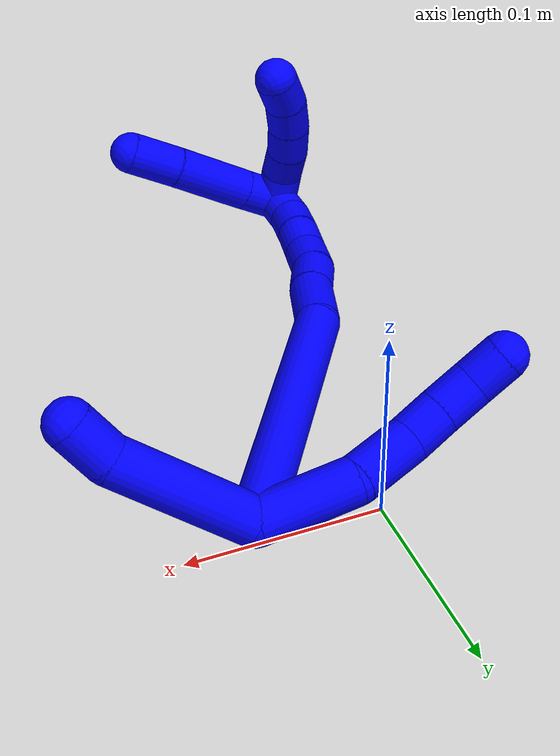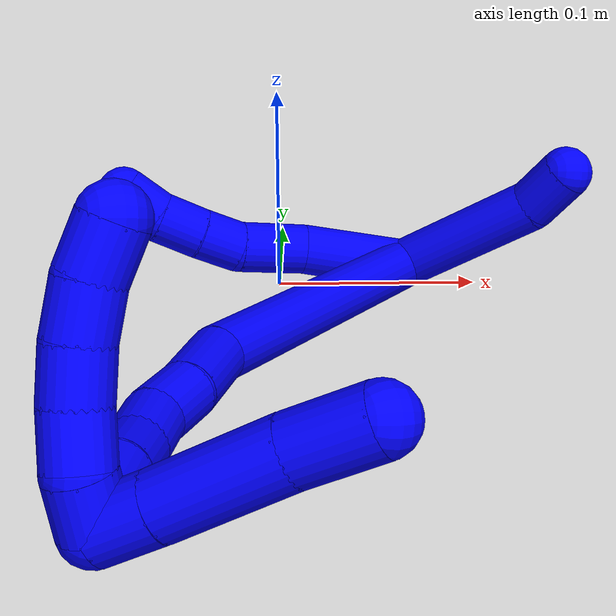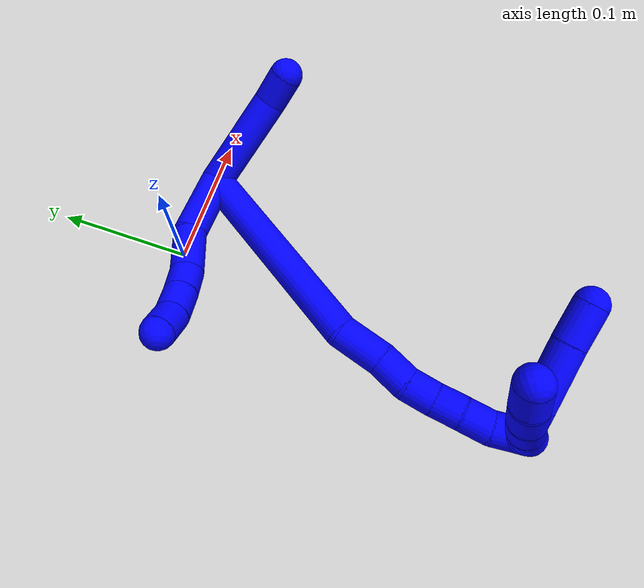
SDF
<sdf version="1.7">
 <world name="default">
  <model name="1">
   <static>0</static>
   <link name="1">
    <collision name="collision-cylinder-e_1_2_8">
     <pose>0.000125 0.010987 0.023472 -0.437793 0.004832 -0.001075</pose>
     <geometry><cylinder><radius>0.0125</radius><length>0.051834</length></cylinder></geometry>
     <surface>
      <friction><ode><mu>1.16</mu><mu2>1.16</mu2><slip1>0</slip1><slip2>0</slip2></ode></friction>
      <contact><ode><kp>1e+06</kp><kd>1</kd><max_vel>0</max_vel><min_depth>0.001</min_depth></ode></contact>
     </surface>
    </collision>
    <visual name="visual-cylinder-e_1_2_8">
     <pose>0.000125 0.010987 0.023472 -0.437793 0.004832 -0.001075</pose>
     <geometry><cylinder><radius>0.0125</radius><length>0.051834</length></cylinder></geometry>
     <material><ambient>0 0 1 1</ambient></material>
    </visual>
    <collision name="collision-cylinder-e_2_8_9">
     <pose>0.000234 0.023569 0.064226 -0.091996 -0.000962 4.4e-05</pose>
     <geometry><cylinder><radius>0.0125</radius><length>0.03471</length></cylinder></geometry>
     <surface>
      <friction><ode><mu>1.16</mu><mu2>1.16</mu2><slip1>0</slip1><slip2>0</slip2></ode></friction>
      <contact><ode><kp>1e+06</kp><kd>1</kd><max_vel>0</max_vel><min_depth>0.001</min_depth></ode></contact>
     </surface>
    </collision>
    <visual name="visual-cylinder-e_2_8_9">
     <pose>0.000234 0.023569 0.064226 -0.091996 -0.000962 4.4e-05</pose>
     <geometry><cylinder><radius>0.0125</radius><length>0.03471</length></cylinder></geometry>
     <material><ambient>0 0 1 1</ambient></material>
    </visual>
    <collision name="collision-cylinder-e_3_9_10">
     <pose>0.002975 0.027329 0.09143 -0.214977 0.265143 -0.028777</pose>
     <geometry><cylinder><radius>0.0125</radius><length>0.021046</length></cylinder></geometry>
     <surface>
      <friction><ode><mu>1.16</mu><mu2>1.16</mu2><slip1>0</slip1><slip2>0</slip2></ode></friction>
      <contact><ode><kp>1e+06</kp><kd>1</kd><max_vel>0</max_vel><min_depth>0.001</min_depth></ode></contact>
     </surface>
    </collision>
    <visual name="visual-cylinder-e_3_9_10">
     <pose>0.002975 0.027329 0.09143 -0.214977 0.265143 -0.028777</pose>
     <geometry><cylinder><radius>0.0125</radius><length>0.021046</length></cylinder></geometry>
     <material><ambient>0 0 1 1</ambient></material>
    </visual>
    <collision name="collision-cylinder-e_4_10_11">
     <pose>0.008971 0.032314 0.111455 -0.271989 0.299501 -0.041287</pose>
     <geometry><cylinder><radius>0.0125</radius><length>0.021957</length></cylinder></geometry>
     <surface>
      <friction><ode><mu>1.16</mu><mu2>1.16</mu2><slip1>0</slip1><slip2>0</slip2></ode></friction>
      <contact><ode><kp>1e+06</kp><kd>1</kd><max_vel>0</max_vel><min_depth>0.001</min_depth></ode></contact>
     </surface>
    </collision>
    <visual name="visual-cylinder-e_4_10_11">
     <pose>0.008971 0.032314 0.111455 -0.271989 0.299501 -0.041287</pose>
     <geometry><cylinder><radius>0.0125</radius><length>0.021957</length></cylinder></geometry>
     <material><ambient>0 0 1 1</ambient></material>
    </visual>
    <collision name="collision-cylinder-e_5_11_6">
     <pose>0.017023 0.039152 0.129638 -0.46177 0.490015 -0.117418</pose>
     <geometry><cylinder><radius>0.0125</radius><length>0.020453</length></cylinder></geometry>
     <surface>
      <friction><ode><mu>1.16</mu><mu2>1.16</mu2><slip1>0</slip1><slip2>0</slip2></ode></friction>
      <contact><ode><kp>1e+06</kp><kd>1</kd><max_vel>0</max_vel><min_depth>0.001</min_depth></ode></contact>
     </surface>
    </collision>
    <visual name="visual-cylinder-e_5_11_6">
     <pose>0.017023 0.039152 0.129638 -0.46177 0.490015 -0.117418</pose>
     <geometry><cylinder><radius>0.0125</radius><length>0.020453</length></cylinder></geometry>
     <material><ambient>0 0 1 1</ambient></material>
    </visual>
    <collision name="collision-cylinder-e_1_2_12">
     <pose>0.023324 -0.022717 -0.018862 2.26373 0.668569 1.27388</pose>
     <geometry><cylinder><radius>0.0125</radius><length>0.075256</length></cylinder></geometry>
     <surface>
      <friction><ode><mu>1.16</mu><mu2>1.16</mu2><slip1>0</slip1><slip2>0</slip2></ode></friction>
      <contact><ode><kp>1e+06</kp><kd>1</kd><max_vel>0</max_vel><min_depth>0.001</min_depth></ode></contact>
     </surface>
    </collision>
    <visual name="visual-cylinder-e_1_2_12">
     <pose>0.023324 -0.022717 -0.018862 2.26373 0.668569 1.27388</pose>
     <geometry><cylinder><radius>0.0125</radius><length>0.075256</length></cylinder></geometry>
     <material><ambient>0 0 1 1</ambient></material>
    </visual>
    <collision name="collision-cylinder-e_2_12_5">
     <pose>0.056795 -0.051713 -0.040995 2.05119 0.961629 1.42061</pose>
     <geometry><cylinder><radius>0.0125</radius><length>0.024744</length></cylinder></geometry>
     <surface>
      <friction><ode><mu>1.16</mu><mu2>1.16</mu2><slip1>0</slip1><slip2>0</slip2></ode></friction>
      <contact><ode><kp>1e+06</kp><kd>1</kd><max_vel>0</max_vel><min_depth>0.001</min_depth></ode></contact>
     </surface>
    </collision>
    <visual name="visual-cylinder-e_2_12_5">
     <pose>0.056795 -0.051713 -0.040995 2.05119 0.961629 1.42061</pose>
     <geometry><cylinder><radius>0.0125</radius><length>0.024744</length></cylinder></geometry>
     <material><ambient>0 0 1 1</ambient></material>
    </visual>
    <collision name="collision-cylinder-e_1_2_13">
     <pose>-0.004886 -0.041023 0.066866 0.550294 -0.0622 -0.017565</pose>
     <geometry><cylinder><radius>0.0125</radius><length>0.157198</length></cylinder></geometry>
     <surface>
      <friction><ode><mu>1.16</mu><mu2>1.16</mu2><slip1>0</slip1><slip2>0</slip2></ode></friction>
      <contact><ode><kp>1e+06</kp><kd>1</kd><max_vel>0</max_vel><min_depth>0.001</min_depth></ode></contact>
     </surface>
    </collision>
    <visual name="visual-cylinder-e_1_2_13">
     <pose>-0.004886 -0.041023 0.066866 0.550294 -0.0622 -0.017565</pose>
     <geometry><cylinder><radius>0.0125</radius><length>0.157198</length></cylinder></geometry>
     <material><ambient>0 0 1 1</ambient></material>
    </visual>
    <collision name="collision-cylinder-e_2_13_14">
     <pose>-0.011401 -0.094922 0.144976 0.85295 -0.09505 -0.043213</pose>
     <geometry><cylinder><radius>0.0125</radius><length>0.034346</length></cylinder></geometry>
     <surface>
      <friction><ode><mu>1.16</mu><mu2>1.16</mu2><slip1>0</slip1><slip2>0</slip2></ode></friction>
      <contact><ode><kp>1e+06</kp><kd>1</kd><max_vel>0</max_vel><min_depth>0.001</min_depth></ode></contact>
     </surface>
    </collision>
    <visual name="visual-cylinder-e_2_13_14">
     <pose>-0.011401 -0.094922 0.144976 0.85295 -0.09505 -0.043213</pose>
     <geometry><cylinder><radius>0.0125</radius><length>0.034346</length></cylinder></geometry>
     <material><ambient>0 0 1 1</ambient></material>
    </visual>
    <collision name="collision-cylinder-e_3_14_15">
     <pose>-0.014623 -0.115463 0.165339 0.698986 -0.132848 -0.048479</pose>
     <geometry><cylinder><radius>0.0125</radius><length>0.024033</length></cylinder></geometry>
     <surface>
      <friction><ode><mu>1.16</mu><mu2>1.16</mu2><slip1>0</slip1><slip2>0</slip2></ode></friction>
      <contact><ode><kp>1e+06</kp><kd>1</kd><max_vel>0</max_vel><min_depth>0.001</min_depth></ode></contact>
     </surface>
    </collision>
    <visual name="visual-cylinder-e_3_14_15">
     <pose>-0.014623 -0.115463 0.165339 0.698986 -0.132848 -0.048479</pose>
     <geometry><cylinder><radius>0.0125</radius><length>0.024033</length></cylinder></geometry>
     <material><ambient>0 0 1 1</ambient></material>
    </visual>
    <collision name="collision-cylinder-e_4_15_16">
     <pose>-0.017354 -0.131892 0.180666 0.95443 -0.105654 -0.054668</pose>
     <geometry><cylinder><radius>0.0125</radius><length>0.021606</length></cylinder></geometry>
     <surface>
      <friction><ode><mu>1.16</mu><mu2>1.16</mu2><slip1>0</slip1><slip2>0</slip2></ode></friction>
      <contact><ode><kp>1e+06</kp><kd>1</kd><max_vel>0</max_vel><min_depth>0.001</min_depth></ode></contact>
     </surface>
    </collision>
    <visual name="visual-cylinder-e_4_15_16">
     <pose>-0.017354 -0.131892 0.180666 0.95443 -0.105654 -0.054668</pose>
     <geometry><cylinder><radius>0.0125</radius><length>0.021606</length></cylinder></geometry>
     <material><ambient>0 0 1 1</ambient></material>
    </visual>
    <collision name="collision-cylinder-e_5_16_17">
     <pose>-0.01825 -0.149249 0.192808 0.966516 0.023314 0.012235</pose>
     <geometry><cylinder><radius>0.0125</radius><length>0.020885</length></cylinder></geometry>
     <surface>
      <friction><ode><mu>1.16</mu><mu2>1.16</mu2><slip1>0</slip1><slip2>0</slip2></ode></friction>
      <contact><ode><kp>1e+06</kp><kd>1</kd><max_vel>0</max_vel><min_depth>0.001</min_depth></ode></contact>
     </surface>
    </collision>
    <visual name="visual-cylinder-e_5_16_17">
     <pose>-0.01825 -0.149249 0.192808 0.966516 0.023314 0.012235</pose>
     <geometry><cylinder><radius>0.0125</radius><length>0.020885</length></cylinder></geometry>
     <material><ambient>0 0 1 1</ambient></material>
    </visual>
    <collision name="collision-cylinder-e_6_17_18">
     <pose>-0.01877 -0.166733 0.204543 0.992603 -0.071823 -0.038905</pose>
     <geometry><cylinder><radius>0.0125</radius><length>0.021293</length></cylinder></geometry>
     <surface>
      <friction><ode><mu>1.16</mu><mu2>1.16</mu2><slip1>0</slip1><slip2>0</slip2></ode></friction>
      <contact><ode><kp>1e+06</kp><kd>1</kd><max_vel>0</max_vel><min_depth>0.001</min_depth></ode></contact>
     </surface>
    </collision>
    <visual name="visual-cylinder-e_6_17_18">
     <pose>-0.01877 -0.166733 0.204543 0.992603 -0.071823 -0.038905</pose>
     <geometry><cylinder><radius>0.0125</radius><length>0.021293</length></cylinder></geometry>
     <material><ambient>0 0 1 1</ambient></material>
    </visual>
    <collision name="collision-cylinder-e_7_18_1">
     <pose>-0.018441 -0.185113 0.214257 1.17976 0.10611 0.071065</pose>
     <geometry><cylinder><radius>0.0125</radius><length>0.02064</length></cylinder></geometry>
     <surface>
      <friction><ode><mu>1.16</mu><mu2>1.16</mu2><slip1>0</slip1><slip2>0</slip2></ode></friction>
      <contact><ode><kp>1e+06</kp><kd>1</kd><max_vel>0</max_vel><min_depth>0.001</min_depth></ode></contact>
     </surface>
    </collision>
    <visual name="visual-cylinder-e_7_18_1">
     <pose>-0.018441 -0.185113 0.214257 1.17976 0.10611 0.071065</pose>
     <geometry><cylinder><radius>0.0125</radius><length>0.02064</length></cylinder></geometry>
     <material><ambient>0 0 1 1</ambient></material>
    </visual>
    <collision name="collision-cylinder-e_1_1_19">
     <pose>-0.010878 -0.200167 0.210498 2.51378 0.598961 1.52069</pose>
     <geometry><cylinder><radius>0.0125</radius><length>0.022951</length></cylinder></geometry>
     <surface>
      <friction><ode><mu>1.16</mu><mu2>1.16</mu2><slip1>0</slip1><slip2>0</slip2></ode></friction>
      <contact><ode><kp>1e+06</kp><kd>1</kd><max_vel>0</max_vel><min_depth>0.001</min_depth></ode></contact>
     </surface>
    </collision>
    <visual name="visual-cylinder-e_1_1_19">
     <pose>-0.010878 -0.200167 0.210498 2.51378 0.598961 1.52069</pose>
     <geometry><cylinder><radius>0.0125</radius><length>0.022951</length></cylinder></geometry>
     <material><ambient>0 0 1 1</ambient></material>
    </visual>
    <collision name="collision-cylinder-e_2_19_20">
     <pose>0.009399 -0.216591 0.187212 2.53408 0.627974 1.60612</pose>
     <geometry><cylinder><radius>0.0125</radius><length>0.047004</length></cylinder></geometry>
     <surface>
      <friction><ode><mu>1.16</mu><mu2>1.16</mu2><slip1>0</slip1><slip2>0</slip2></ode></friction>
      <contact><ode><kp>1e+06</kp><kd>1</kd><max_vel>0</max_vel><min_depth>0.001</min_depth></ode></contact>
     </surface>
    </collision>
    <visual name="visual-cylinder-e_2_19_20">
     <pose>0.009399 -0.216591 0.187212 2.53408 0.627974 1.60612</pose>
     <geometry><cylinder><radius>0.0125</radius><length>0.047004</length></cylinder></geometry>
     <material><ambient>0 0 1 1</ambient></material>
    </visual>
    <collision name="collision-cylinder-e_3_20_4">
     <pose>0.031454 -0.235224 0.161739 2.47366 0.581172 1.42274</pose>
     <geometry><cylinder><radius>0.0125</radius><length>0.030044</length></cylinder></geometry>
     <surface>
      <friction><ode><mu>1.16</mu><mu2>1.16</mu2><slip1>0</slip1><slip2>0</slip2></ode></friction>
      <contact><ode><kp>1e+06</kp><kd>1</kd><max_vel>0</max_vel><min_depth>0.001</min_depth></ode></contact>
     </surface>
    </collision>
    <visual name="visual-cylinder-e_3_20_4">
     <pose>0.031454 -0.235224 0.161739 2.47366 0.581172 1.42274</pose>
     <geometry><cylinder><radius>0.0125</radius><length>0.030044</length></cylinder></geometry>
     <material><ambient>0 0 1 1</ambient></material>
    </visual>
    <collision name="collision-cylinder-e_1_1_21">
     <pose>-0.007936 -0.192901 0.221087 -0.527457 1.22633 -0.375515</pose>
     <geometry><cylinder><radius>0.0125</radius><length>0.02</length></cylinder></geometry>
     <surface>
      <friction><ode><mu>1.16</mu><mu2>1.16</mu2><slip1>0</slip1><slip2>0</slip2></ode></friction>
      <contact><ode><kp>1e+06</kp><kd>1</kd><max_vel>0</max_vel><min_depth>0.001</min_depth></ode></contact>
     </surface>
    </collision>
    <visual name="visual-cylinder-e_1_1_21">
     <pose>-0.007936 -0.192901 0.221087 -0.527457 1.22633 -0.375515</pose>
     <geometry><cylinder><radius>0.0125</radius><length>0.02</length></cylinder></geometry>
     <material><ambient>0 0 1 1</ambient></material>
    </visual>
    <collision name="collision-cylinder-e_2_21_22">
     <pose>0.010648 -0.187229 0.224338 -1.48711 1.16079 -1.0853</pose>
     <geometry><cylinder><radius>0.0125</radius><length>0.02</length></cylinder></geometry>
     <surface>
      <friction><ode><mu>1.16</mu><mu2>1.16</mu2><slip1>0</slip1><slip2>0</slip2></ode></friction>
      <contact><ode><kp>1e+06</kp><kd>1</kd><max_vel>0</max_vel><min_depth>0.001</min_depth></ode></contact>
     </surface>
    </collision>
    <visual name="visual-cylinder-e_2_21_22">
     <pose>0.010648 -0.187229 0.224338 -1.48711 1.16079 -1.0853</pose>
     <geometry><cylinder><radius>0.0125</radius><length>0.02</length></cylinder></geometry>
     <material><ambient>0 0 1 1</ambient></material>
    </visual>
    <collision name="collision-cylinder-e_3_22_23">
     <pose>0.029448 -0.180569 0.224429 -1.66061 1.29757 -1.38512</pose>
     <geometry><cylinder><radius>0.0125</radius><length>0.02</length></cylinder></geometry>
     <surface>
      <friction><ode><mu>1.16</mu><mu2>1.16</mu2><slip1>0</slip1><slip2>0</slip2></ode></friction>
      <contact><ode><kp>1e+06</kp><kd>1</kd><max_vel>0</max_vel><min_depth>0.001</min_depth></ode></contact>
     </surface>
    </collision>
    <visual name="visual-cylinder-e_3_22_23">
     <pose>0.029448 -0.180569 0.224429 -1.66061 1.29757 -1.38512</pose>
     <geometry><cylinder><radius>0.0125</radius><length>0.02</length></cylinder></geometry>
     <material><ambient>0 0 1 1</ambient></material>
    </visual>
    <collision name="collision-cylinder-e_4_23_24">
     <pose>0.048778 -0.175884 0.222802 -2.17697 1.32527 -1.95969</pose>
     <geometry><cylinder><radius>0.0125</radius><length>0.02</length></cylinder></geometry>
     <surface>
      <friction><ode><mu>1.16</mu><mu2>1.16</mu2><slip1>0</slip1><slip2>0</slip2></ode></friction>
      <contact><ode><kp>1e+06</kp><kd>1</kd><max_vel>0</max_vel><min_depth>0.001</min_depth></ode></contact>
     </surface>
    </collision>
    <visual name="visual-cylinder-e_4_23_24">
     <pose>0.048778 -0.175884 0.222802 -2.17697 1.32527 -1.95969</pose>
     <geometry><cylinder><radius>0.0125</radius><length>0.02</length></cylinder></geometry>
     <material><ambient>0 0 1 1</ambient></material>
    </visual>
    <collision name="collision-cylinder-e_5_24_3">
     <pose>0.067958 -0.172956 0.218375 -2.8448 1.24706 -2.73173</pose>
     <geometry><cylinder><radius>0.0125</radius><length>0.02</length></cylinder></geometry>
     <surface>
      <friction><ode><mu>1.16</mu><mu2>1.16</mu2><slip1>0</slip1><slip2>0</slip2></ode></friction>
      <contact><ode><kp>1e+06</kp><kd>1</kd><max_vel>0</max_vel><min_depth>0.001</min_depth></ode></contact>
     </surface>
    </collision>
    <visual name="visual-cylinder-e_5_24_3">
     <pose>0.067958 -0.172956 0.218375 -2.8448 1.24706 -2.73173</pose>
     <geometry><cylinder><radius>0.0125</radius><length>0.02</length></cylinder></geometry>
     <material><ambient>0 0 1 1</ambient></material>
    </visual>
    <collision name="collision-sphere-3">
     <pose>0.077439 -0.172026 0.215333 0 -0 0</pose>
     <geometry><sphere><radius>0.0125</radius></sphere></geometry>
     <surface>
      <friction><ode><mu>1.16</mu><mu2>1.16</mu2><slip1>0</slip1><slip2>0</slip2></ode></friction>
      <contact><ode><kp>1e+06</kp><kd>1</kd><max_vel>0</max_vel><min_depth>0.001</min_depth></ode></contact>
     </surface>
    </collision>
    <visual name="visual-sphere-3">
     <pose>0.077439 -0.172026 0.215333 0 -0 0</pose>
     <geometry><sphere><radius>0.0125</radius></sphere></geometry>
     <material><ambient>0 0 1 1</ambient></material>
    </visual>
    <collision name="collision-sphere-24">
     <pose>0.058478 -0.173886 0.221417 0 -0 0</pose>
     <geometry><sphere><radius>0.0125</radius></sphere></geometry>
     <surface>
      <friction><ode><mu>1.16</mu><mu2>1.16</mu2><slip1>0</slip1><slip2>0</slip2></ode></friction>
      <contact><ode><kp>1e+06</kp><kd>1</kd><max_vel>0</max_vel><min_depth>0.001</min_depth></ode></contact>
     </surface>
    </collision>
    <visual name="visual-sphere-24">
     <pose>0.058478 -0.173886 0.221417 0 -0 0</pose>
     <geometry><sphere><radius>0.0125</radius></sphere></geometry>
     <material><ambient>0 0 1 1</ambient></material>
    </visual>
    <collision name="collision-sphere-23">
     <pose>0.039078 -0.177881 0.224187 0 -0 0</pose>
     <geometry><sphere><radius>0.0125</radius></sphere></geometry>
     <surface>
      <friction><ode><mu>1.16</mu><mu2>1.16</mu2><slip1>0</slip1><slip2>0</slip2></ode></friction>
      <contact><ode><kp>1e+06</kp><kd>1</kd><max_vel>0</max_vel><min_depth>0.001</min_depth></ode></contact>
     </surface>
    </collision>
    <visual name="visual-sphere-23">
     <pose>0.039078 -0.177881 0.224187 0 -0 0</pose>
     <geometry><sphere><radius>0.0125</radius></sphere></geometry>
     <material><ambient>0 0 1 1</ambient></material>
    </visual>
    <collision name="collision-sphere-22">
     <pose>0.019819 -0.183256 0.224671 0 -0 0</pose>
     <geometry><sphere><radius>0.0125</radius></sphere></geometry>
     <surface>
      <friction><ode><mu>1.16</mu><mu2>1.16</mu2><slip1>0</slip1><slip2>0</slip2></ode></friction>
      <contact><ode><kp>1e+06</kp><kd>1</kd><max_vel>0</max_vel><min_depth>0.001</min_depth></ode></contact>
     </surface>
    </collision>
    <visual name="visual-sphere-22">
     <pose>0.019819 -0.183256 0.224671 0 -0 0</pose>
     <geometry><sphere><radius>0.0125</radius></sphere></geometry>
     <material><ambient>0 0 1 1</ambient></material>
    </visual>
    <collision name="collision-sphere-21">
     <pose>0.001477 -0.191201 0.224005 0 -0 0</pose>
     <geometry><sphere><radius>0.0125</radius></sphere></geometry>
     <surface>
      <friction><ode><mu>1.16</mu><mu2>1.16</mu2><slip1>0</slip1><slip2>0</slip2></ode></friction>
      <contact><ode><kp>1e+06</kp><kd>1</kd><max_vel>0</max_vel><min_depth>0.001</min_depth></ode></contact>
     </surface>
    </collision>
    <visual name="visual-sphere-21">
     <pose>0.001477 -0.191201 0.224005 0 -0 0</pose>
     <geometry><sphere><radius>0.0125</radius></sphere></geometry>
     <material><ambient>0 0 1 1</ambient></material>
    </visual>
    <collision name="collision-sphere-4">
     <pose>0.039701 -0.243 0.151881 0 -0 0</pose>
     <geometry><sphere><radius>0.0125</radius></sphere></geometry>
     <surface>
      <friction><ode><mu>1.16</mu><mu2>1.16</mu2><slip1>0</slip1><slip2>0</slip2></ode></friction>
      <contact><ode><kp>1e+06</kp><kd>1</kd><max_vel>0</max_vel><min_depth>0.001</min_depth></ode></contact>
     </surface>
    </collision>
    <visual name="visual-sphere-4">
     <pose>0.039701 -0.243 0.151881 0 -0 0</pose>
     <geometry><sphere><radius>0.0125</radius></sphere></geometry>
     <material><ambient>0 0 1 1</ambient></material>
    </visual>
    <collision name="collision-sphere-20">
     <pose>0.023207 -0.227447 0.171596 0 -0 0</pose>
     <geometry><sphere><radius>0.0125</radius></sphere></geometry>
     <surface>
      <friction><ode><mu>1.16</mu><mu2>1.16</mu2><slip1>0</slip1><slip2>0</slip2></ode></friction>
      <contact><ode><kp>1e+06</kp><kd>1</kd><max_vel>0</max_vel><min_depth>0.001</min_depth></ode></contact>
     </surface>
    </collision>
    <visual name="visual-sphere-20">
     <pose>0.023207 -0.227447 0.171596 0 -0 0</pose>
     <geometry><sphere><radius>0.0125</radius></sphere></geometry>
     <material><ambient>0 0 1 1</ambient></material>
    </visual>
    <collision name="collision-sphere-6">
     <pose>0.021836 0.043172 0.137716 0 -0 0</pose>
     <geometry><sphere><radius>0.0125</radius></sphere></geometry>
     <surface>
      <friction><ode><mu>1.16</mu><mu2>1.16</mu2><slip1>0</slip1><slip2>0</slip2></ode></friction>
      <contact><ode><kp>1e+06</kp><kd>1</kd><max_vel>0</max_vel><min_depth>0.001</min_depth></ode></contact>
     </surface>
    </collision>
    <visual name="visual-sphere-6">
     <pose>0.021836 0.043172 0.137716 0 -0 0</pose>
     <geometry><sphere><radius>0.0125</radius></sphere></geometry>
     <material><ambient>0 0 1 1</ambient></material>
    </visual>
    <collision name="collision-sphere-11">
     <pose>0.01221 0.035132 0.121559 0 -0 0</pose>
     <geometry><sphere><radius>0.0125</radius></sphere></geometry>
     <surface>
      <friction><ode><mu>1.16</mu><mu2>1.16</mu2><slip1>0</slip1><slip2>0</slip2></ode></friction>
      <contact><ode><kp>1e+06</kp><kd>1</kd><max_vel>0</max_vel><min_depth>0.001</min_depth></ode></contact>
     </surface>
    </collision>
    <visual name="visual-sphere-11">
     <pose>0.01221 0.035132 0.121559 0 -0 0</pose>
     <geometry><sphere><radius>0.0125</radius></sphere></geometry>
     <material><ambient>0 0 1 1</ambient></material>
    </visual>
    <collision name="collision-sphere-10">
     <pose>0.005732 0.029496 0.101351 0 -0 0</pose>
     <geometry><sphere><radius>0.0125</radius></sphere></geometry>
     <surface>
      <friction><ode><mu>1.16</mu><mu2>1.16</mu2><slip1>0</slip1><slip2>0</slip2></ode></friction>
      <contact><ode><kp>1e+06</kp><kd>1</kd><max_vel>0</max_vel><min_depth>0.001</min_depth></ode></contact>
     </surface>
    </collision>
    <visual name="visual-sphere-10">
     <pose>0.005732 0.029496 0.101351 0 -0 0</pose>
     <geometry><sphere><radius>0.0125</radius></sphere></geometry>
     <material><ambient>0 0 1 1</ambient></material>
    </visual>
    <collision name="collision-sphere-9">
     <pose>0.000217 0.025163 0.081508 0 -0 0</pose>
     <geometry><sphere><radius>0.0125</radius></sphere></geometry>
     <surface>
      <friction><ode><mu>1.16</mu><mu2>1.16</mu2><slip1>0</slip1><slip2>0</slip2></ode></friction>
      <contact><ode><kp>1e+06</kp><kd>1</kd><max_vel>0</max_vel><min_depth>0.001</min_depth></ode></contact>
     </surface>
    </collision>
    <visual name="visual-sphere-9">
     <pose>0.000217 0.025163 0.081508 0 -0 0</pose>
     <geometry><sphere><radius>0.0125</radius></sphere></geometry>
     <material><ambient>0 0 1 1</ambient></material>
    </visual>
    <collision name="collision-sphere-2">
     <geometry><sphere><radius>0.0125</radius></sphere></geometry>
     <surface>
      <friction><ode><mu>1.16</mu><mu2>1.16</mu2><slip1>0</slip1><slip2>0</slip2></ode></friction>
      <contact><ode><kp>1e+06</kp><kd>1</kd><max_vel>0</max_vel><min_depth>0.001</min_depth></ode></contact>
     </surface>
    </collision>
    <visual name="visual-sphere-2">
     <geometry><sphere><radius>0.0125</radius></sphere></geometry>
     <material><ambient>0 0 1 1</ambient></material>
    </visual>
    <collision name="collision-sphere-19">
     <pose>-0.004409 -0.205735 0.202827 0 -0 0</pose>
     <geometry><sphere><radius>0.0125</radius></sphere></geometry>
     <surface>
      <friction><ode><mu>1.16</mu><mu2>1.16</mu2><slip1>0</slip1><slip2>0</slip2></ode></friction>
      <contact><ode><kp>1e+06</kp><kd>1</kd><max_vel>0</max_vel><min_depth>0.001</min_depth></ode></contact>
     </surface>
    </collision>
    <visual name="visual-sphere-19">
     <pose>-0.004409 -0.205735 0.202827 0 -0 0</pose>
     <geometry><sphere><radius>0.0125</radius></sphere></geometry>
     <material><ambient>0 0 1 1</ambient></material>
    </visual>
    <collision name="collision-sphere-8">
     <pose>0.00025 0.021974 0.046945 0 -0 0</pose>
     <geometry><sphere><radius>0.0125</radius></sphere></geometry>
     <surface>
      <friction><ode><mu>1.16</mu><mu2>1.16</mu2><slip1>0</slip1><slip2>0</slip2></ode></friction>
      <contact><ode><kp>1e+06</kp><kd>1</kd><max_vel>0</max_vel><min_depth>0.001</min_depth></ode></contact>
     </surface>
    </collision>
    <visual name="visual-sphere-8">
     <pose>0.00025 0.021974 0.046945 0 -0 0</pose>
     <geometry><sphere><radius>0.0125</radius></sphere></geometry>
     <material><ambient>0 0 1 1</ambient></material>
    </visual>
    <collision name="collision-sphere-12">
     <pose>0.046648 -0.045435 -0.037723 0 -0 0</pose>
     <geometry><sphere><radius>0.0125</radius></sphere></geometry>
     <surface>
      <friction><ode><mu>1.16</mu><mu2>1.16</mu2><slip1>0</slip1><slip2>0</slip2></ode></friction>
      <contact><ode><kp>1e+06</kp><kd>1</kd><max_vel>0</max_vel><min_depth>0.001</min_depth></ode></contact>
     </surface>
    </collision>
    <visual name="visual-sphere-12">
     <pose>0.046648 -0.045435 -0.037723 0 -0 0</pose>
     <geometry><sphere><radius>0.0125</radius></sphere></geometry>
     <material><ambient>0 0 1 1</ambient></material>
    </visual>
    <collision name="collision-sphere-5">
     <pose>0.066942 -0.05799 -0.044266 0 -0 0</pose>
     <geometry><sphere><radius>0.0125</radius></sphere></geometry>
     <surface>
      <friction><ode><mu>1.16</mu><mu2>1.16</mu2><slip1>0</slip1><slip2>0</slip2></ode></friction>
      <contact><ode><kp>1e+06</kp><kd>1</kd><max_vel>0</max_vel><min_depth>0.001</min_depth></ode></contact>
     </surface>
    </collision>
    <visual name="visual-sphere-5">
     <pose>0.066942 -0.05799 -0.044266 0 -0 0</pose>
     <geometry><sphere><radius>0.0125</radius></sphere></geometry>
     <material><ambient>0 0 1 1</ambient></material>
    </visual>
    <collision name="collision-sphere-13">
     <pose>-0.009771 -0.082046 0.133732 0 -0 0</pose>
     <geometry><sphere><radius>0.0125</radius></sphere></geometry>
     <surface>
      <friction><ode><mu>1.16</mu><mu2>1.16</mu2><slip1>0</slip1><slip2>0</slip2></ode></friction>
      <contact><ode><kp>1e+06</kp><kd>1</kd><max_vel>0</max_vel><min_depth>0.001</min_depth></ode></contact>
     </surface>
    </collision>
    <visual name="visual-sphere-13">
     <pose>-0.009771 -0.082046 0.133732 0 -0 0</pose>
     <geometry><sphere><radius>0.0125</radius></sphere></geometry>
     <material><ambient>0 0 1 1</ambient></material>
    </visual>
    <collision name="collision-sphere-14">
     <pose>-0.013031 -0.107799 0.156221 0 -0 0</pose>
     <geometry><sphere><radius>0.0125</radius></sphere></geometry>
     <surface>
      <friction><ode><mu>1.16</mu><mu2>1.16</mu2><slip1>0</slip1><slip2>0</slip2></ode></friction>
      <contact><ode><kp>1e+06</kp><kd>1</kd><max_vel>0</max_vel><min_depth>0.001</min_depth></ode></contact>
     </surface>
    </collision>
    <visual name="visual-sphere-14">
     <pose>-0.013031 -0.107799 0.156221 0 -0 0</pose>
     <geometry><sphere><radius>0.0125</radius></sphere></geometry>
     <material><ambient>0 0 1 1</ambient></material>
    </visual>
    <collision name="collision-sphere-15">
     <pose>-0.016214 -0.123126 0.174456 0 -0 0</pose>
     <geometry><sphere><radius>0.0125</radius></sphere></geometry>
     <surface>
      <friction><ode><mu>1.16</mu><mu2>1.16</mu2><slip1>0</slip1><slip2>0</slip2></ode></friction>
      <contact><ode><kp>1e+06</kp><kd>1</kd><max_vel>0</max_vel><min_depth>0.001</min_depth></ode></contact>
     </surface>
    </collision>
    <visual name="visual-sphere-15">
     <pose>-0.016214 -0.123126 0.174456 0 -0 0</pose>
     <geometry><sphere><radius>0.0125</radius></sphere></geometry>
     <material><ambient>0 0 1 1</ambient></material>
    </visual>
    <collision name="collision-sphere-16">
     <pose>-0.018493 -0.140658 0.186876 0 -0 0</pose>
     <geometry><sphere><radius>0.0125</radius></sphere></geometry>
     <surface>
      <friction><ode><mu>1.16</mu><mu2>1.16</mu2><slip1>0</slip1><slip2>0</slip2></ode></friction>
      <contact><ode><kp>1e+06</kp><kd>1</kd><max_vel>0</max_vel><min_depth>0.001</min_depth></ode></contact>
     </surface>
    </collision>
    <visual name="visual-sphere-16">
     <pose>-0.018493 -0.140658 0.186876 0 -0 0</pose>
     <geometry><sphere><radius>0.0125</radius></sphere></geometry>
     <material><ambient>0 0 1 1</ambient></material>
    </visual>
    <collision name="collision-sphere-17">
     <pose>-0.018006 -0.15784 0.198739 0 -0 0</pose>
     <geometry><sphere><radius>0.0125</radius></sphere></geometry>
     <surface>
      <friction><ode><mu>1.16</mu><mu2>1.16</mu2><slip1>0</slip1><slip2>0</slip2></ode></friction>
      <contact><ode><kp>1e+06</kp><kd>1</kd><max_vel>0</max_vel><min_depth>0.001</min_depth></ode></contact>
     </surface>
    </collision>
    <visual name="visual-sphere-17">
     <pose>-0.018006 -0.15784 0.198739 0 -0 0</pose>
     <geometry><sphere><radius>0.0125</radius></sphere></geometry>
     <material><ambient>0 0 1 1</ambient></material>
    </visual>
    <collision name="collision-sphere-18">
     <pose>-0.019534 -0.175626 0.210346 0 -0 0</pose>
     <geometry><sphere><radius>0.0125</radius></sphere></geometry>
     <surface>
      <friction><ode><mu>1.16</mu><mu2>1.16</mu2><slip1>0</slip1><slip2>0</slip2></ode></friction>
      <contact><ode><kp>1e+06</kp><kd>1</kd><max_vel>0</max_vel><min_depth>0.001</min_depth></ode></contact>
     </surface>
    </collision>
    <visual name="visual-sphere-18">
     <pose>-0.019534 -0.175626 0.210346 0 -0 0</pose>
     <geometry><sphere><radius>0.0125</radius></sphere></geometry>
     <material><ambient>0 0 1 1</ambient></material>
    </visual>
    <collision name="collision-sphere-1">
     <pose>-0.017348 -0.1946 0.218169 0 -0 0</pose>
     <geometry><sphere><radius>0.0125</radius></sphere></geometry>
     <surface>
      <friction><ode><mu>1.16</mu><mu2>1.16</mu2><slip1>0</slip1><slip2>0</slip2></ode></friction>
      <contact><ode><kp>1e+06</kp><kd>1</kd><max_vel>0</max_vel><min_depth>0.001</min_depth></ode></contact>
     </surface>
    </collision>
    <visual name="visual-sphere-1">
     <pose>-0.017348 -0.1946 0.218169 0 -0 0</pose>
     <geometry><sphere><radius>0.0125</radius></sphere></geometry>
     <material><ambient>0 0 1 1</ambient></material>
    </visual>
    <inertial>
     <pose>0.006468 -0.08716 0.113224 0 -0 0</pose>
     <mass>0.75</mass>
     <inertia>
      <ixx>0.000427</ixx>
      <ixy>0</ixy>
      <ixz>0</ixz>
      <iyy>0.000352</iyy>
      <iyz>0</iyz>
      <izz>0.000202</izz>
     </inertia>
    </inertial>
   </link>
   <pose>0.063427 -0.003438 0.011499 0.388267 -1.41207 0.050061</pose>
  </model>
 </world>
</sdf>
